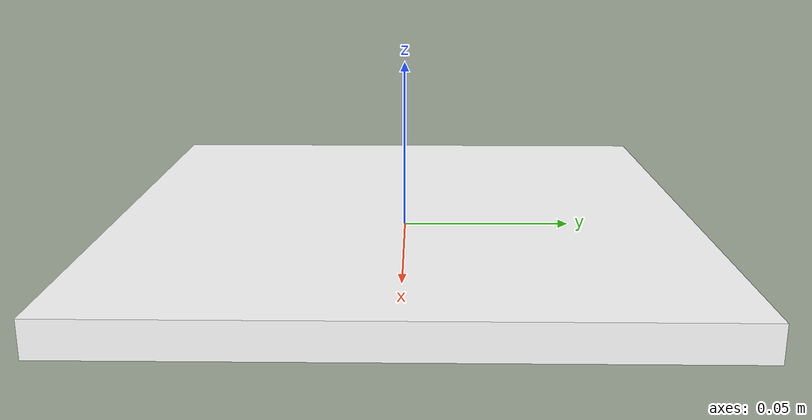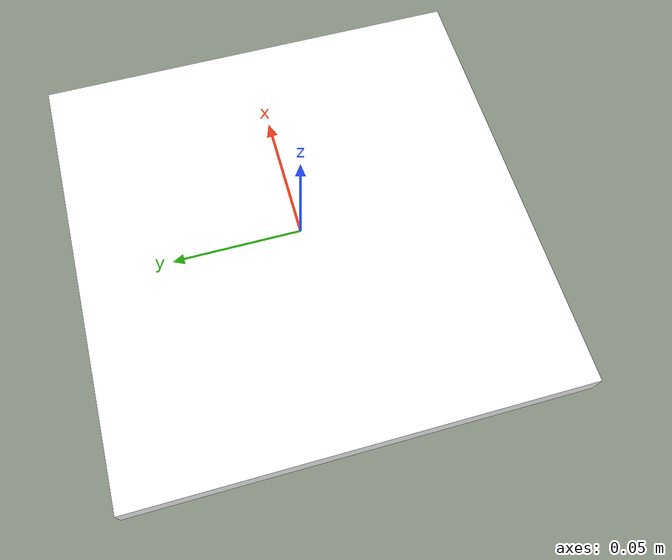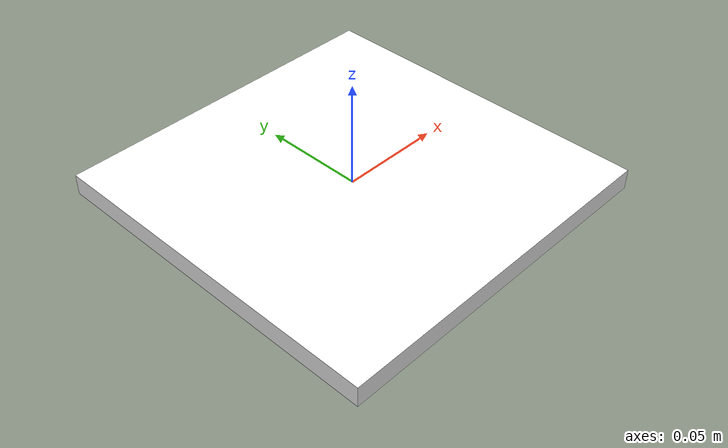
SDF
<?xml version='1.0'?>
<sdf version='1.6'>
  <model name='Apriltag36_11_00003'>
    <link name='main'>
    <pose frame=''>0 0 0 0 0 0</pose>
      <visual name='main_Visual'>
        <geometry>
          <box>
          <size>0.17 0.17 0.01</size>
          </box>
        </geometry>
        <material>
          <ambient>1 1 1 1</ambient>
          <diffuse>1 1 1 1</diffuse>
          <specular>0.1 0.1 0.1 1</specular>
          <pbr>
            <metal>
              <albedo_map>model://Apriltag36_11_00003/materials/textures/tag36_11_00003.png</albedo_map>
              <roughness>0.9</roughness>
              <metalness>0</metalness>
            </metal>
          </pbr>
          <script>
            <uri>model://Apriltag36_11_00003/materials/scripts</uri>
            <uri>model://Apriltag36_11_00003/materials/textures</uri>
            <name>Apriltag36_11_00003</name>
          </script>
        </material>
      </visual>
     </link>
    <static>1</static>
  </model>
</sdf>
